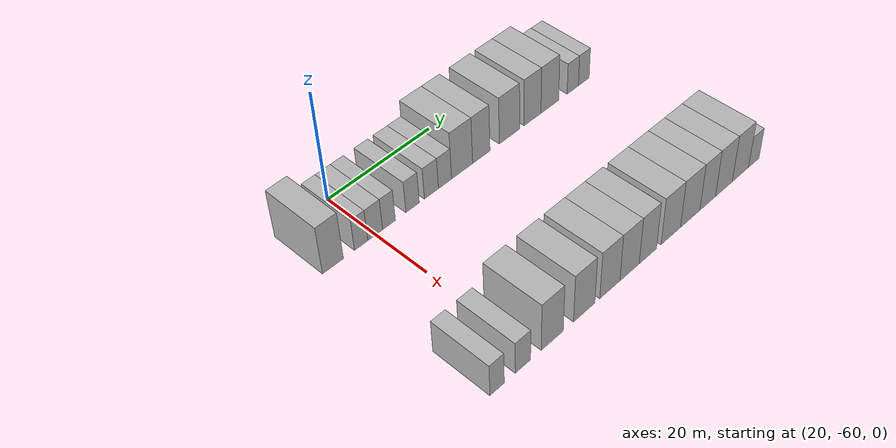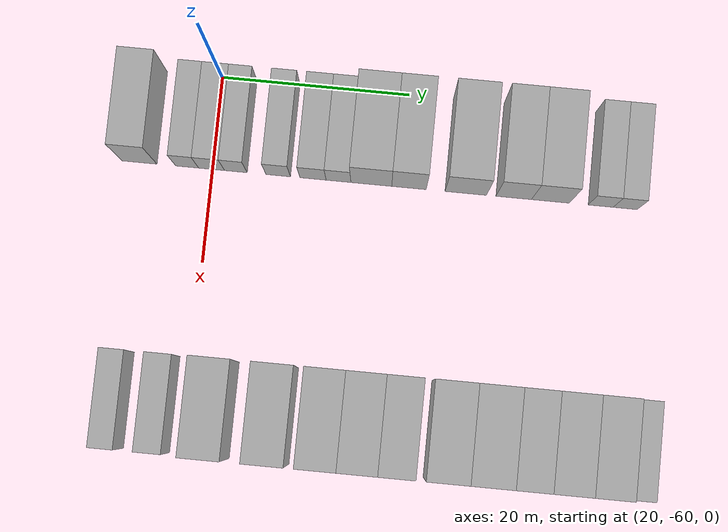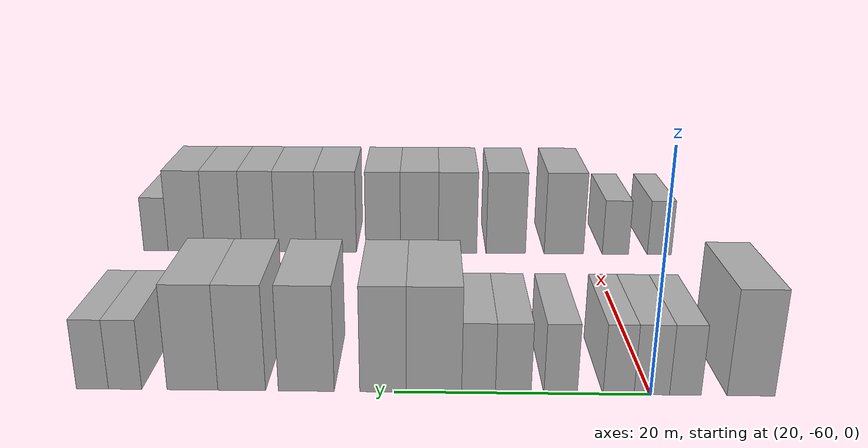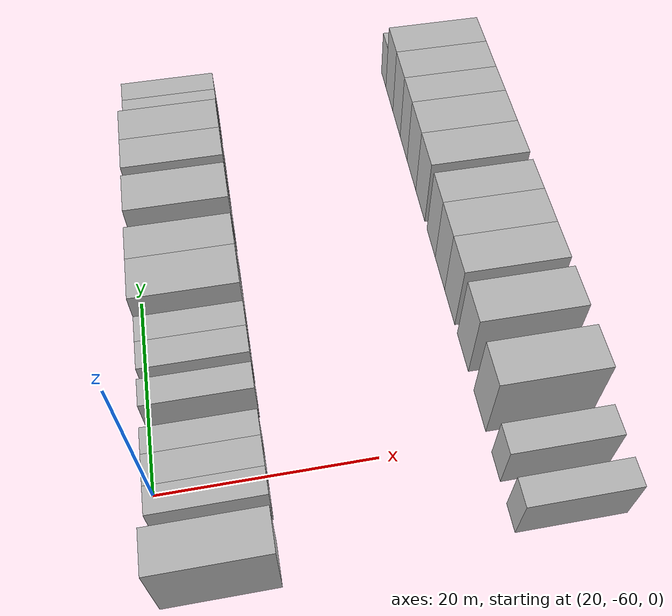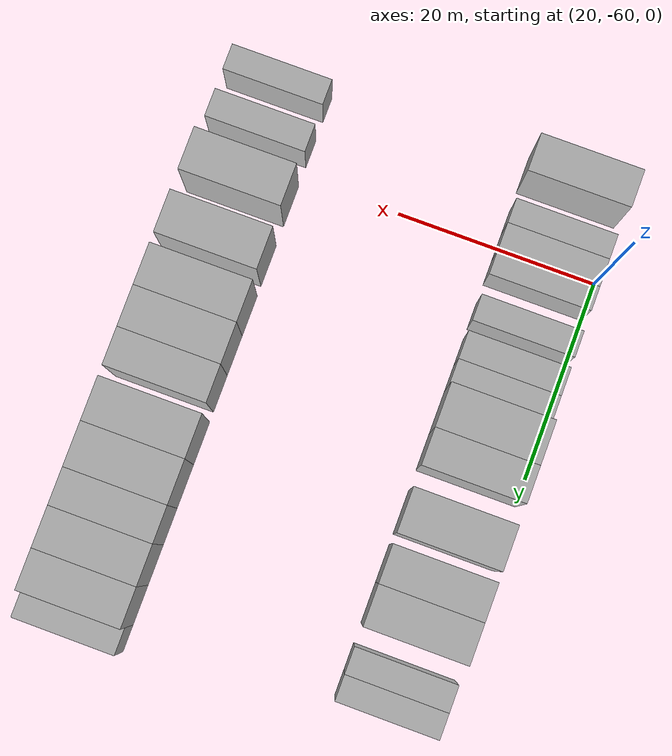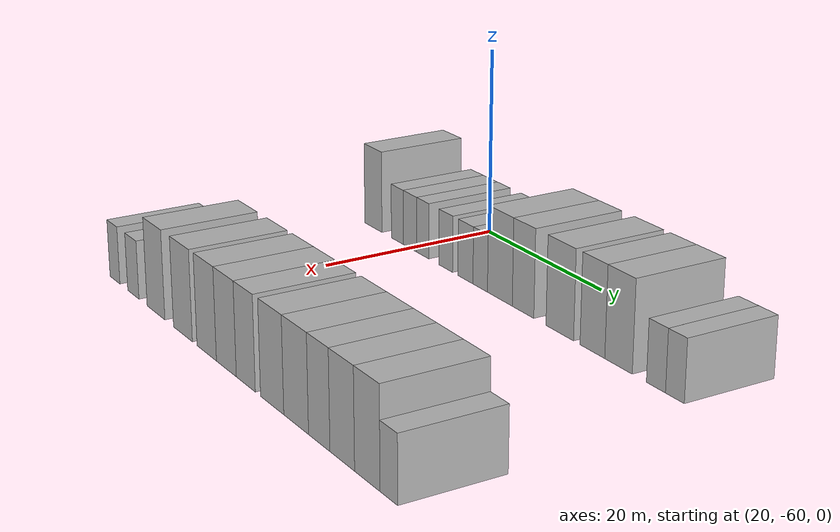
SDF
<sdf version="1.6">
 <world name="default">
  <model name="building_40">
   <static>1</static>
   <pose>25.0000 -67.7535 0 0.000000 0.000000 0.000000</pose>
   <link name="link">
    <pose>0 0 4.50 0 0 0</pose>
    <collision name="collision"><geometry><box><size>10.0000 3.7132 9.0000</size></box></geometry></collision>
    <visual name="visual">
     <cast_shadows>0</cast_shadows>
     <geometry><box><size>10.0000 3.7132 9.0000</size></box></geometry>
     <material>
      <script>
       <uri>model://HANNAS_wall/materials/scripts</uri>
       <uri>model://HANNAS_wall/materials/textures</uri>
       <name>vrc/HANNAS_wall</name>
      </script>
     </material>
    </visual>
   </link>
  </model>
  <model name="building_41">
   <static>1</static>
   <pose>25.0000 -62.6704 0 0.000000 0.000000 0.000000</pose>
   <link name="link">
    <pose>0 0 3.00 0 0 0</pose>
    <collision name="collision"><geometry><box><size>10.0000 2.4529 6.0000</size></box></geometry></collision>
    <visual name="visual">
     <cast_shadows>0</cast_shadows>
     <geometry><box><size>10.0000 2.4529 6.0000</size></box></geometry>
     <material>
      <script>
       <uri>model://HANNAS_wall/materials/scripts</uri>
       <uri>model://HANNAS_wall/materials/textures</uri>
       <name>vrc/HANNAS_wall</name>
      </script>
     </material>
    </visual>
   </link>
  </model>
  <model name="building_42">
   <static>1</static>
   <pose>25.0000 -60.0665 0 0.000000 0.000000 0.000000</pose>
   <link name="link">
    <pose>0 0 3.00 0 0 0</pose>
    <collision name="collision"><geometry><box><size>10.0000 2.7548 6.0000</size></box></geometry></collision>
    <visual name="visual">
     <cast_shadows>0</cast_shadows>
     <geometry><box><size>10.0000 2.7548 6.0000</size></box></geometry>
     <material>
      <script>
       <uri>model://HANNAS_wall/materials/scripts</uri>
       <uri>model://HANNAS_wall/materials/textures</uri>
       <name>vrc/HANNAS_wall</name>
      </script>
     </material>
    </visual>
   </link>
  </model>
  <model name="building_43">
   <static>1</static>
   <pose>25.0000 -57.4870 0 0.000000 0.000000 0.000000</pose>
   <link name="link">
    <pose>0 0 3.00 0 0 0</pose>
    <collision name="collision"><geometry><box><size>10.0000 2.4043 6.0000</size></box></geometry></collision>
    <visual name="visual">
     <cast_shadows>0</cast_shadows>
     <geometry><box><size>10.0000 2.4043 6.0000</size></box></geometry>
     <material>
      <script>
       <uri>model://HANNAS_wall/materials/scripts</uri>
       <uri>model://HANNAS_wall/materials/textures</uri>
       <name>vrc/HANNAS_wall</name>
      </script>
     </material>
    </visual>
   </link>
  </model>
  <model name="building_44">
   <static>1</static>
   <pose>25.0000 -52.9829 0 0.000000 0.000000 0.000000</pose>
   <link name="link">
    <pose>0 0 3.00 0 0 0</pose>
    <collision name="collision"><geometry><box><size>10.0000 2.6038 6.0000</size></box></geometry></collision>
    <visual name="visual">
     <cast_shadows>0</cast_shadows>
     <geometry><box><size>10.0000 2.6038 6.0000</size></box></geometry>
     <material>
      <script>
       <uri>model://HANNAS_wall/materials/scripts</uri>
       <uri>model://HANNAS_wall/materials/textures</uri>
       <name>vrc/HANNAS_wall</name>
      </script>
     </material>
    </visual>
   </link>
  </model>
  <model name="building_45">
   <static>1</static>
   <pose>25.0000 -49.2864 0 0.000000 0.000000 0.000000</pose>
   <link name="link">
    <pose>0 0 3.00 0 0 0</pose>
    <collision name="collision"><geometry><box><size>10.0000 2.7891 6.0000</size></box></geometry></collision>
    <visual name="visual">
     <cast_shadows>0</cast_shadows>
     <geometry><box><size>10.0000 2.7891 6.0000</size></box></geometry>
     <material>
      <script>
       <uri>model://HANNAS_wall/materials/scripts</uri>
       <uri>model://HANNAS_wall/materials/textures</uri>
       <name>vrc/HANNAS_wall</name>
      </script>
     </material>
    </visual>
   </link>
  </model>
  <model name="building_46">
   <static>1</static>
   <pose>25.0000 -46.5743 0 0.000000 0.000000 0.000000</pose>
   <link name="link">
    <pose>0 0 3.00 0 0 0</pose>
    <collision name="collision"><geometry><box><size>10.0000 2.6351 6.0000</size></box></geometry></collision>
    <visual name="visual">
     <cast_shadows>0</cast_shadows>
     <geometry><box><size>10.0000 2.6351 6.0000</size></box></geometry>
     <material>
      <script>
       <uri>model://HANNAS_wall/materials/scripts</uri>
       <uri>model://HANNAS_wall/materials/textures</uri>
       <name>vrc/HANNAS_wall</name>
      </script>
     </material>
    </visual>
   </link>
  </model>
  <model name="building_47">
   <static>1</static>
   <pose>25.0000 -43.0862 0 0.000000 0.000000 0.000000</pose>
   <link name="link">
    <pose>0 0 4.50 0 0 0</pose>
    <collision name="collision"><geometry><box><size>10.0000 4.3411 9.0000</size></box></geometry></collision>
    <visual name="visual">
     <cast_shadows>0</cast_shadows>
     <geometry><box><size>10.0000 4.3411 9.0000</size></box></geometry>
     <material>
      <script>
       <uri>model://HANNAS_wall/materials/scripts</uri>
       <uri>model://HANNAS_wall/materials/textures</uri>
       <name>vrc/HANNAS_wall</name>
      </script>
     </material>
    </visual>
   </link>
  </model>
  <model name="building_48">
   <static>1</static>
   <pose>25.0000 -39.0927 0 0.000000 0.000000 0.000000</pose>
   <link name="link">
    <pose>0 0 4.50 0 0 0</pose>
    <collision name="collision"><geometry><box><size>10.0000 3.6459 9.0000</size></box></geometry></collision>
    <visual name="visual">
     <cast_shadows>0</cast_shadows>
     <geometry><box><size>10.0000 3.6459 9.0000</size></box></geometry>
     <material>
      <script>
       <uri>model://HANNAS_wall/materials/scripts</uri>
       <uri>model://HANNAS_wall/materials/textures</uri>
       <name>vrc/HANNAS_wall</name>
      </script>
     </material>
    </visual>
   </link>
  </model>
  <model name="building_49">
   <static>1</static>
   <pose>25.0000 -33.0676 0 0.000000 0.000000 0.000000</pose>
   <link name="link">
    <pose>0 0 4.50 0 0 0</pose>
    <collision name="collision"><geometry><box><size>10.0000 4.4043 9.0000</size></box></geometry></collision>
    <visual name="visual">
     <cast_shadows>0</cast_shadows>
     <geometry><box><size>10.0000 4.4043 9.0000</size></box></geometry>
     <material>
      <script>
       <uri>model://HANNAS_wall/materials/scripts</uri>
       <uri>model://HANNAS_wall/materials/textures</uri>
       <name>vrc/HANNAS_wall</name>
      </script>
     </material>
    </visual>
   </link>
  </model>
  <model name="building_50">
   <static>1</static>
   <pose>25.0000 -27.9828 0 0.000000 0.000000 0.000000</pose>
   <link name="link">
    <pose>0 0 4.50 0 0 0</pose>
    <collision name="collision"><geometry><box><size>10.0000 3.7653 9.0000</size></box></geometry></collision>
    <visual name="visual">
     <cast_shadows>0</cast_shadows>
     <geometry><box><size>10.0000 3.7653 9.0000</size></box></geometry>
     <material>
      <script>
       <uri>model://HANNAS_wall/materials/scripts</uri>
       <uri>model://HANNAS_wall/materials/textures</uri>
       <name>vrc/HANNAS_wall</name>
      </script>
     </material>
    </visual>
   </link>
  </model>
  <model name="building_51">
   <static>1</static>
   <pose>25.0000 -24.0890 0 0.000000 0.000000 0.000000</pose>
   <link name="link">
    <pose>0 0 4.50 0 0 0</pose>
    <collision name="collision"><geometry><box><size>10.0000 4.0223 9.0000</size></box></geometry></collision>
    <visual name="visual">
     <cast_shadows>0</cast_shadows>
     <geometry><box><size>10.0000 4.0223 9.0000</size></box></geometry>
     <material>
      <script>
       <uri>model://HANNAS_wall/materials/scripts</uri>
       <uri>model://HANNAS_wall/materials/textures</uri>
       <name>vrc/HANNAS_wall</name>
      </script>
     </material>
    </visual>
   </link>
  </model>
  <model name="building_52">
   <static>1</static>
   <pose>25.0000 -18.7575 0 0.000000 0.000000 0.000000</pose>
   <link name="link">
    <pose>0 0 3.00 0 0 0</pose>
    <collision name="collision"><geometry><box><size>10.0000 2.6407 6.0000</size></box></geometry></collision>
    <visual name="visual">
     <cast_shadows>0</cast_shadows>
     <geometry><box><size>10.0000 2.6407 6.0000</size></box></geometry>
     <material>
      <script>
       <uri>model://HANNAS_wall/materials/scripts</uri>
       <uri>model://HANNAS_wall/materials/textures</uri>
       <name>vrc/HANNAS_wall</name>
      </script>
     </material>
    </visual>
   </link>
  </model>
  <model name="building_53">
   <static>1</static>
   <pose>25.0000 -16.1649 0 0.000000 0.000000 0.000000</pose>
   <link name="link">
    <pose>0 0 3.00 0 0 0</pose>
    <collision name="collision"><geometry><box><size>10.0000 2.5445 6.0000</size></box></geometry></collision>
    <visual name="visual">
     <cast_shadows>0</cast_shadows>
     <geometry><box><size>10.0000 2.5445 6.0000</size></box></geometry>
     <material>
      <script>
       <uri>model://HANNAS_wall/materials/scripts</uri>
       <uri>model://HANNAS_wall/materials/textures</uri>
       <name>vrc/HANNAS_wall</name>
      </script>
     </material>
    </visual>
   </link>
  </model>
  <model name="building_147">
   <static>1</static>
   <pose>55.0000 -67.3146 0 0.000000 0.000000 0.000000</pose>
   <link name="link">
    <pose>0 0 3.00 0 0 0</pose>
    <collision name="collision"><geometry><box><size>10.0000 2.5694 6.0000</size></box></geometry></collision>
    <visual name="visual">
     <cast_shadows>0</cast_shadows>
     <geometry><box><size>10.0000 2.5694 6.0000</size></box></geometry>
     <material>
      <script>
       <uri>model://HANNAS_wall/materials/scripts</uri>
       <uri>model://HANNAS_wall/materials/textures</uri>
       <name>vrc/HANNAS_wall</name>
      </script>
     </material>
    </visual>
   </link>
  </model>
  <model name="building_148">
   <static>1</static>
   <pose>55.0000 -62.6272 0 0.000000 0.000000 0.000000</pose>
   <link name="link">
    <pose>0 0 3.00 0 0 0</pose>
    <collision name="collision"><geometry><box><size>10.0000 2.8053 6.0000</size></box></geometry></collision>
    <visual name="visual">
     <cast_shadows>0</cast_shadows>
     <geometry><box><size>10.0000 2.8053 6.0000</size></box></geometry>
     <material>
      <script>
       <uri>model://HANNAS_wall/materials/scripts</uri>
       <uri>model://HANNAS_wall/materials/textures</uri>
       <name>vrc/HANNAS_wall</name>
      </script>
     </material>
    </visual>
   </link>
  </model>
  <model name="building_149">
   <static>1</static>
   <pose>55.0000 -57.1163 0 0.000000 0.000000 0.000000</pose>
   <link name="link">
    <pose>0 0 4.50 0 0 0</pose>
    <collision name="collision"><geometry><box><size>10.0000 4.2167 9.0000</size></box></geometry></collision>
    <visual name="visual">
     <cast_shadows>0</cast_shadows>
     <geometry><box><size>10.0000 4.2167 9.0000</size></box></geometry>
     <material>
      <script>
       <uri>model://HANNAS_wall/materials/scripts</uri>
       <uri>model://HANNAS_wall/materials/textures</uri>
       <name>vrc/HANNAS_wall</name>
      </script>
     </material>
    </visual>
   </link>
  </model>
  <model name="building_150">
   <static>1</static>
   <pose>55.0000 -50.8945 0 0.000000 0.000000 0.000000</pose>
   <link name="link">
    <pose>0 0 4.50 0 0 0</pose>
    <collision name="collision"><geometry><box><size>10.0000 4.2269 9.0000</size></box></geometry></collision>
    <visual name="visual">
     <cast_shadows>0</cast_shadows>
     <geometry><box><size>10.0000 4.2269 9.0000</size></box></geometry>
     <material>
      <script>
       <uri>model://HANNAS_wall/materials/scripts</uri>
       <uri>model://HANNAS_wall/materials/textures</uri>
       <name>vrc/HANNAS_wall</name>
      </script>
     </material>
    </visual>
   </link>
  </model>
  <model name="building_151">
   <static>1</static>
   <pose>55.0000 -45.7098 0 0.000000 0.000000 0.000000</pose>
   <link name="link">
    <pose>0 0 4.50 0 0 0</pose>
    <collision name="collision"><geometry><box><size>10.0000 4.1424 9.0000</size></box></geometry></collision>
    <visual name="visual">
     <cast_shadows>0</cast_shadows>
     <geometry><box><size>10.0000 4.1424 9.0000</size></box></geometry>
     <material>
      <script>
       <uri>model://HANNAS_wall/materials/scripts</uri>
       <uri>model://HANNAS_wall/materials/textures</uri>
       <name>vrc/HANNAS_wall</name>
      </script>
     </material>
    </visual>
   </link>
  </model>
  <model name="building_152">
   <static>1</static>
   <pose>55.0000 -41.6051 0 0.000000 0.000000 0.000000</pose>
   <link name="link">
    <pose>0 0 4.50 0 0 0</pose>
    <collision name="collision"><geometry><box><size>10.0000 4.0669 9.0000</size></box></geometry></collision>
    <visual name="visual">
     <cast_shadows>0</cast_shadows>
     <geometry><box><size>10.0000 4.0669 9.0000</size></box></geometry>
     <material>
      <script>
       <uri>model://HANNAS_wall/materials/scripts</uri>
       <uri>model://HANNAS_wall/materials/textures</uri>
       <name>vrc/HANNAS_wall</name>
      </script>
     </material>
    </visual>
   </link>
  </model>
  <model name="building_153">
   <static>1</static>
   <pose>55.0000 -37.7034 0 0.000000 0.000000 0.000000</pose>
   <link name="link">
    <pose>0 0 4.50 0 0 0</pose>
    <collision name="collision"><geometry><box><size>10.0000 3.7365 9.0000</size></box></geometry></collision>
    <visual name="visual">
     <cast_shadows>0</cast_shadows>
     <geometry><box><size>10.0000 3.7365 9.0000</size></box></geometry>
     <material>
      <script>
       <uri>model://HANNAS_wall/materials/scripts</uri>
       <uri>model://HANNAS_wall/materials/textures</uri>
       <name>vrc/HANNAS_wall</name>
      </script>
     </material>
    </visual>
   </link>
  </model>
  <model name="building_154">
   <static>1</static>
   <pose>55.0000 -32.6665 0 0.000000 0.000000 0.000000</pose>
   <link name="link">
    <pose>0 0 4.50 0 0 0</pose>
    <collision name="collision"><geometry><box><size>10.0000 4.3372 9.0000</size></box></geometry></collision>
    <visual name="visual">
     <cast_shadows>0</cast_shadows>
     <geometry><box><size>10.0000 4.3372 9.0000</size></box></geometry>
     <material>
      <script>
       <uri>model://HANNAS_wall/materials/scripts</uri>
       <uri>model://HANNAS_wall/materials/textures</uri>
       <name>vrc/HANNAS_wall</name>
      </script>
     </material>
    </visual>
   </link>
  </model>
  <model name="building_155">
   <static>1</static>
   <pose>55.0000 -28.2984 0 0.000000 0.000000 0.000000</pose>
   <link name="link">
    <pose>0 0 4.50 0 0 0</pose>
    <collision name="collision"><geometry><box><size>10.0000 4.3990 9.0000</size></box></geometry></collision>
    <visual name="visual">
     <cast_shadows>0</cast_shadows>
     <geometry><box><size>10.0000 4.3990 9.0000</size></box></geometry>
     <material>
      <script>
       <uri>model://HANNAS_wall/materials/scripts</uri>
       <uri>model://HANNAS_wall/materials/textures</uri>
       <name>vrc/HANNAS_wall</name>
      </script>
     </material>
    </visual>
   </link>
  </model>
  <model name="building_156">
   <static>1</static>
   <pose>55.0000 -24.2727 0 0.000000 0.000000 0.000000</pose>
   <link name="link">
    <pose>0 0 4.50 0 0 0</pose>
    <collision name="collision"><geometry><box><size>10.0000 3.6523 9.0000</size></box></geometry></collision>
    <visual name="visual">
     <cast_shadows>0</cast_shadows>
     <geometry><box><size>10.0000 3.6523 9.0000</size></box></geometry>
     <material>
      <script>
       <uri>model://HANNAS_wall/materials/scripts</uri>
       <uri>model://HANNAS_wall/materials/textures</uri>
       <name>vrc/HANNAS_wall</name>
      </script>
     </material>
    </visual>
   </link>
  </model>
  <model name="building_157">
   <static>1</static>
   <pose>55.0000 -20.4346 0 0.000000 0.000000 0.000000</pose>
   <link name="link">
    <pose>0 0 4.50 0 0 0</pose>
    <collision name="collision"><geometry><box><size>10.0000 4.0240 9.0000</size></box></geometry></collision>
    <visual name="visual">
     <cast_shadows>0</cast_shadows>
     <geometry><box><size>10.0000 4.0240 9.0000</size></box></geometry>
     <material>
      <script>
       <uri>model://HANNAS_wall/materials/scripts</uri>
       <uri>model://HANNAS_wall/materials/textures</uri>
       <name>vrc/HANNAS_wall</name>
      </script>
     </material>
    </visual>
   </link>
  </model>
  <model name="building_158">
   <static>1</static>
   <pose>55.0000 -16.4394 0 0.000000 0.000000 0.000000</pose>
   <link name="link">
    <pose>0 0 4.50 0 0 0</pose>
    <collision name="collision"><geometry><box><size>10.0000 3.9663 9.0000</size></box></geometry></collision>
    <visual name="visual">
     <cast_shadows>0</cast_shadows>
     <geometry><box><size>10.0000 3.9663 9.0000</size></box></geometry>
     <material>
      <script>
       <uri>model://HANNAS_wall/materials/scripts</uri>
       <uri>model://HANNAS_wall/materials/textures</uri>
       <name>vrc/HANNAS_wall</name>
      </script>
     </material>
    </visual>
   </link>
  </model>
  <model name="building_159">
   <static>1</static>
   <pose>55.0000 -13.1335 0 0.000000 0.000000 0.000000</pose>
   <link name="link">
    <pose>0 0 3.00 0 0 0</pose>
    <collision name="collision"><geometry><box><size>10.0000 2.6455 6.0000</size></box></geometry></collision>
    <visual name="visual">
     <cast_shadows>0</cast_shadows>
     <geometry><box><size>10.0000 2.6455 6.0000</size></box></geometry>
     <material>
      <script>
       <uri>model://HANNAS_wall/materials/scripts</uri>
       <uri>model://HANNAS_wall/materials/textures</uri>
       <name>vrc/HANNAS_wall</name>
      </script>
     </material>
    </visual>
   </link>
  </model>
 </world>
</sdf>
